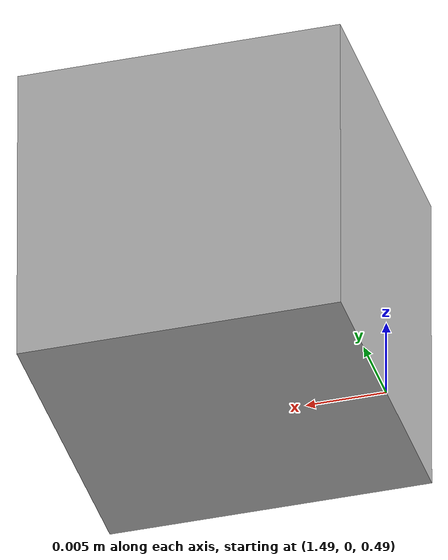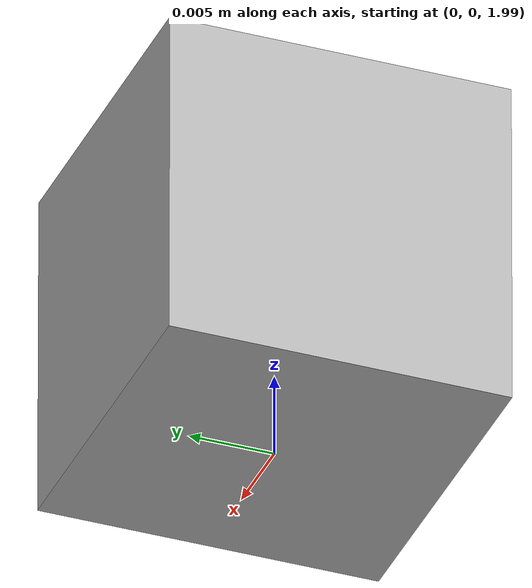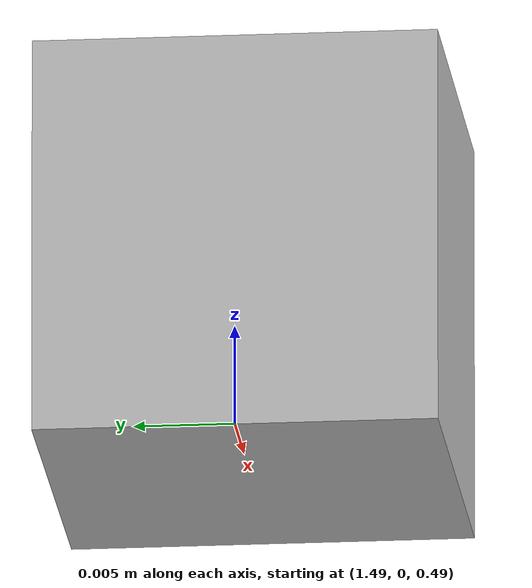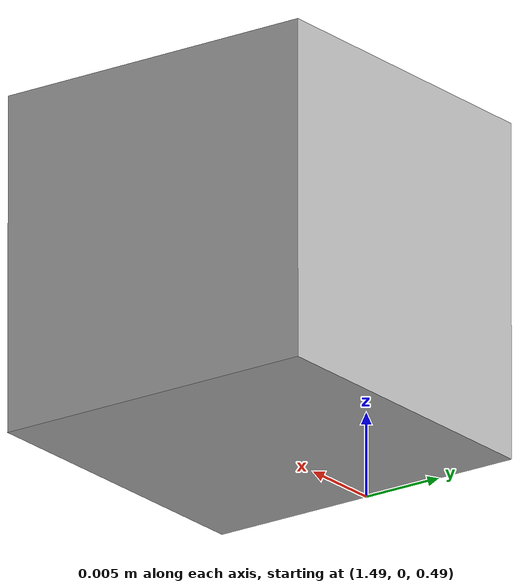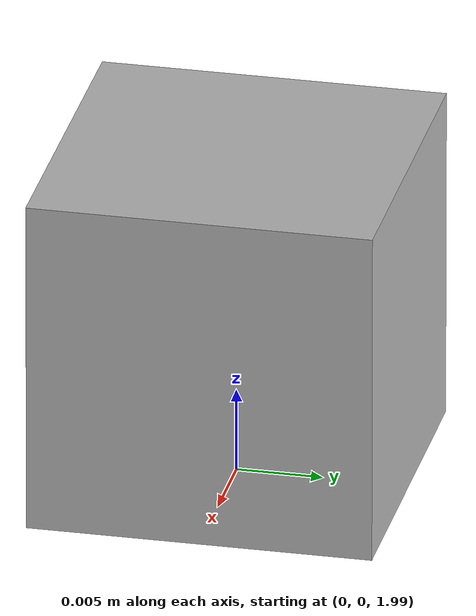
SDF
<?xml version="1.0"?>
<sdf version="1.8">
  <model name="camera_rig">
    <static>true</static>

    <link name="camera0_link">
      <pose>1.5 0.0 0.5 0.0 0.0 3.14</pose>
      <visual name="camera0_visual">
        <geometry>
          <box>
            <size>0.02 0.02 0.02</size>
          </box>
        </geometry>
      </visual>
      <sensor name="camera0" type="camera">
        <always_on>1</always_on>
        <update_rate>10</update_rate>
        <topic>/camera0/image_raw</topic>
        <camera>
          <horizontal_fov>1.3962634</horizontal_fov>
          <image>
            <width>640</width>
            <height>480</height>
            <format>R8G8B8</format>
          </image>
          <clip>
            <near>0.02</near>
            <far>300.0</far>
          </clip>
        </camera>
      </sensor>
    </link>

    <link name="camera1_link">
      <pose>0.0 0.0 2.0 0.0 1.57 0.0</pose>
      <visual name="camera1_visual">
        <geometry>
          <box>
            <size>0.02 0.02 0.02</size>
          </box>
        </geometry>
      </visual>
      <sensor name="camera1" type="camera">
        <always_on>1</always_on>
        <update_rate>10</update_rate>
        <topic>/camera1/image_raw</topic>
        <camera>
          <horizontal_fov>1.3962634</horizontal_fov>
          <image>
            <width>640</width>
            <height>480</height>
            <format>R8G8B8</format>
          </image>
          <clip>
            <near>0.02</near>
            <far>300.0</far>
          </clip>
        </camera>
      </sensor>
    </link>
  </model>
</sdf>
